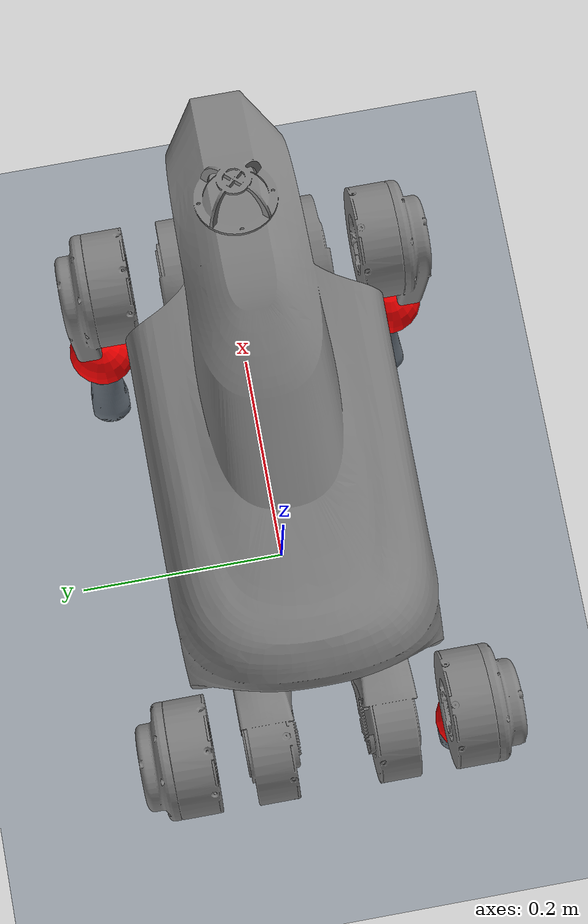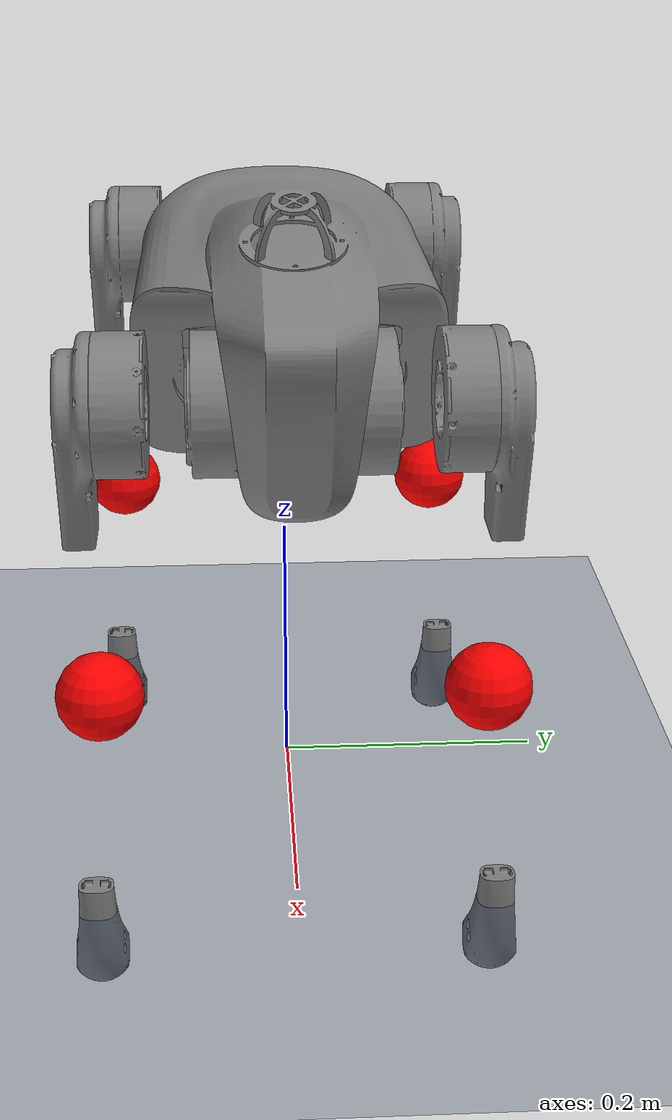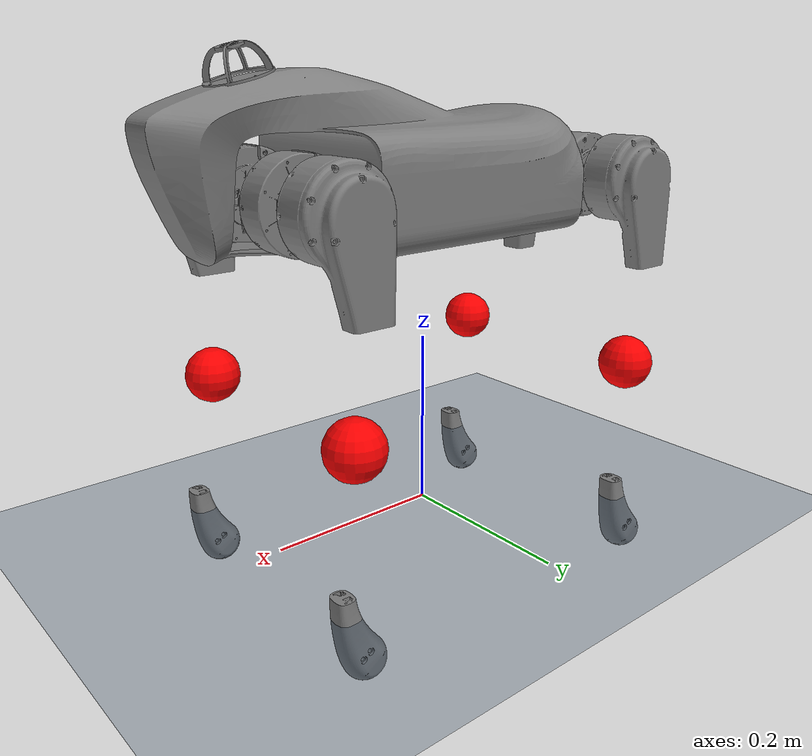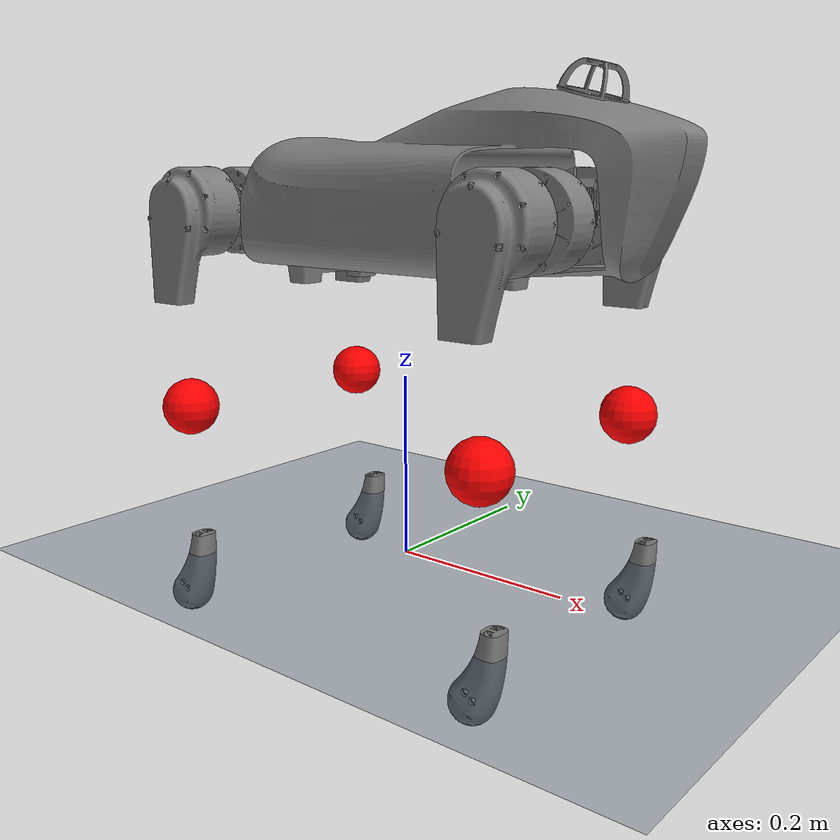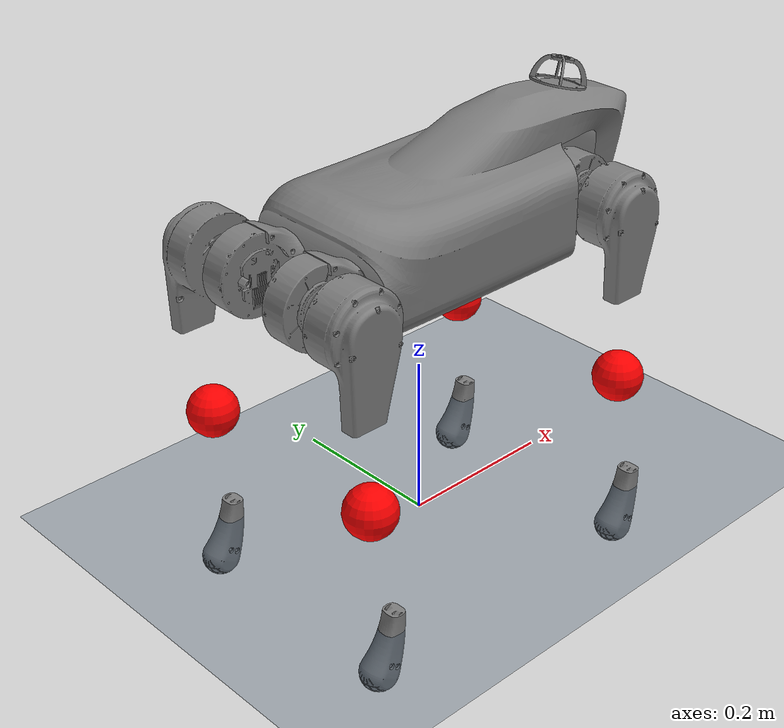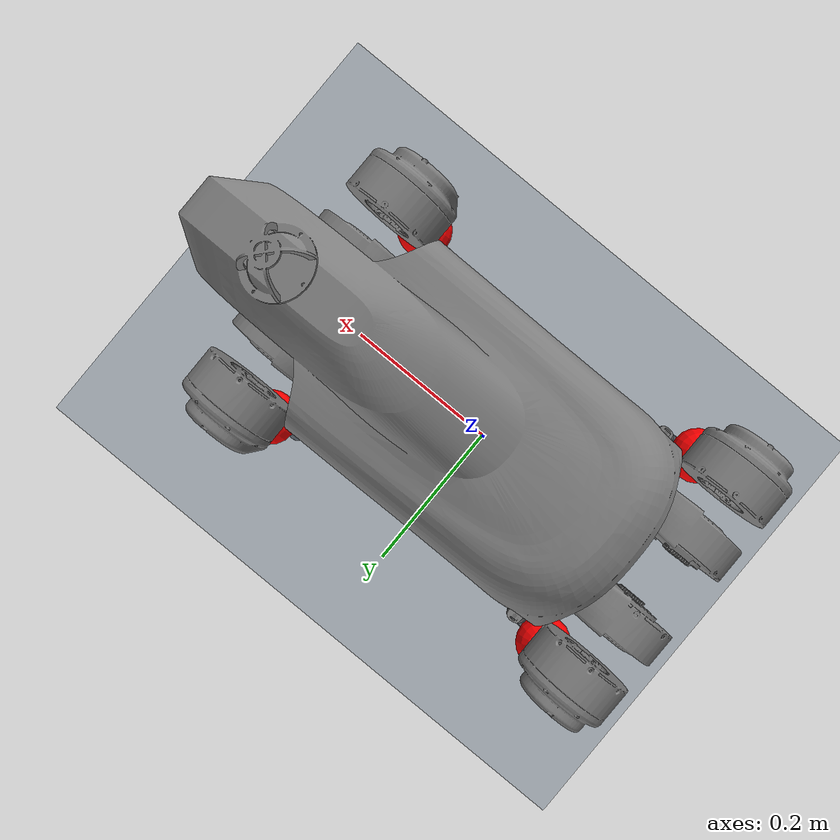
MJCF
<mujoco model="wr3">
  <compiler angle="radian"/>
   <include file="wr3_v2_sphere_knee_has_limit.xml" />

  <option timestep='0.005' iterations='50' solver='PGS' gravity='0 0 -9.81'>
    <flag  frictionloss="enable"/>
  </option>

  <size njmax="500" nconmax="100" />
  <statistic center="1 0.7 1.5" extent="0.8" />
  <visual>
    <headlight diffuse="0.6 0.6 0.6" ambient="0.3 0.3 0.3" specular="0 0 0" />
    <rgba haze="0.15 0.25 0.35 1" />
    <global azimuth="-140" elevation="-30" />
  </visual>
  <asset>
    <texture type="skybox" builtin="flat" rgb1="0 0 0" rgb2="0 0 0" width="512" height="3072" />
    <texture type="2d" name="groundplane" builtin="checker" mark="edge" rgb1="0.2 0.3 0.4"
      rgb2="0.1 0.2 0.3" markrgb="0.8 0.8 0.8" width="300" height="300" />
    <material name="groundplane" texture="groundplane" texuniform="true" texrepeat="5 5"
      reflectance="0.2" />
    <texture type="skybox" builtin="gradient" rgb1="0.3 0.5 0.7" rgb2="0 0 0" width="512" height="512"/>
    <texture name="texplane" type="2d" builtin="checker" rgb1=".2 .3 .4" rgb2=".1 0.15 0.2"
        width="512" height="512" mark="cross" markrgb=".8 .8 .8"/>
    <texture name="texplane2" type="2d" builtin="checker" rgb1="1 0.3137 0.1843" rgb2="0.0 0.30196 0.38039"
        width="512" height="512" mark="cross" markrgb=".8 .8 .8"/>
    <material name="matplane" reflectance="0." texture="texplane" texrepeat="1 1" texuniform="true"/>
    <material name="matplane2" reflectance="0.1" texture="texplane2" texrepeat="1 1" texuniform="true"/>
    <hfield name='hf0' nrow='200' ncol='200' size="10 5 0.2 .1"/>
    <hfield file="../terrain/uneven.png" name="hf1" ncol="0" nrow="0" size="50 50 0.35 0.1" />
  </asset>
  <worldbody>
    <light directional="true" diffuse=".4 .4 .4" specular="0.1 0.1 0.1" pos="0 0 5.0" dir="0 0 -1" castshadow="false"/>
    <light directional="true" diffuse=".6 .6 .6" specular="0.2 0.2 0.2" pos="0 0 4" dir="0 0 -1"/>
    <geom name="floor" size="0 0 0.05" type="plane" material="groundplane" />
  </worldbody>
</mujoco>

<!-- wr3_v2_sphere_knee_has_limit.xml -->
<mujoco model="wr3">
    <compiler angle="radian" meshdir="./meshes/" autolimits="true"/>
    <default>
        <default class="wr3">
            <geom type="mesh"/>
            <joint damping="0." armature="0.0" limited="true"/>
            <default class="visual">
                <geom contype="0" conaffinity="0" group="2"/>
            </default>
            <default class="collision">
                <geom group="3" mass="0" density="0"/>
            </default>
            <site size="0.001" rgba="0.5 0.5 0.5 0.3" group="4"/>
        </default>
    </default>

    <asset>
        <mesh name="trunk_link" file="trunk_link.STL"/>
        <mesh name="FL_hip_link" file="FL_hip_link.STL"/>
        <mesh name="FL_thigh_link" file="FL_thigh_link.STL"/>
        <mesh name="FL_calf_link" file="FL_calf_link.STL"/>
        <mesh name="FR_hip_link" file="FR_hip_link.STL"/>
        <mesh name="FR_thigh_link" file="FR_thigh_link.STL"/>
        <mesh name="FR_calf_link" file="FR_calf_link.STL"/>
        <mesh name="RL_hip_link" file="RL_hip_link.STL"/>
        <mesh name="RL_thigh_link" file="RL_thigh_link.STL"/>
        <mesh name="RL_calf_link" file="RL_calf_link.STL"/>
        <mesh name="RR_hip_link" file="RR_hip_link.STL"/>
        <mesh name="RR_thigh_link" file="RR_thigh_link.STL"/>
        <mesh name="RR_calf_link" file="RR_calf_link.STL"/>
    </asset>

    <worldbody>
        <body name="trunk_link" pos="-0. 0. 0.375" childclass="wr3">
            <inertial pos="0.023376 0.001413 0.010474" quat="0 0 0 1" mass="8.028"
                      diaginertia="0.034 0.107105 0.115227"/>
            <freejoint/>
            <geom class="visual" mesh="trunk_link"/>
            <geom class="collision" mesh="trunk_link"/>
            <body name="FL_hip_link" pos="0.135 0.05 0">
                <inertial pos="0.057196 0.003387 -8.5e-05" quat="0.512282 0.516274 0.485122 0.485474" mass="0.838"
                          diaginertia="0.00104664 0.000737277 0.00058853"/>
                <joint name="FL_hip_joint" pos="0 0 0" axis="1 0 0" limited="true" range="-0.69813 0.69813"/>
                <geom class="visual" mesh="FL_hip_link"/>
                <body name="FL_thigh_link" pos="0.0625 0.02 0">
                    <inertial pos="-0.001565 0.046615 -0.027916" quat="0.63718 -0.0578282 0.0378488 0.76761"
                              mass="1.059" diaginertia="0.00482696 0.00453766 0.000725459"/>
                    <joint name="FL_thigh_joint" pos="0 0 0" axis="0 1 0" limited="true" range="-0.66323 0.79253"/>
                    <geom class="visual" mesh="FL_thigh_link"/>
                    <geom type="sphere" size="0.031" pos="0 0.0652  -0.213" rgba="1. 0. 0. 1." mass="0"/>
                    <body name="FL_calf_link" pos="0 0.0732 -0.213">
                        <inertial pos="0.008159 0.000159 -0.10787" quat="0.713411 0.00272894 0.00401625 0.700729"
                                  mass="0.125" diaginertia="0.000955627 0.00094351 2.87627e-05"/>
                        <joint name="FL_calf_joint" pos="0 0 0" axis="0 1 0" limited="true" range="-2.7053 -0.89012"/>
                        <geom class="visual" mesh="FL_calf_link"/>
                        <geom class="collision" mesh="FL_calf_link"/>
                    </body>
                </body>
            </body>
            <body name="FR_hip_link" pos="0.135 -0.05 0">
                <inertial pos="0.056824 -0.003763 -1.9e-05" quat="0.485952 0.48455 0.519225 0.50938" mass="0.826"
                          diaginertia="0.00102787 0.000719354 0.000572311"/>
                <joint name="FR_hip_joint" pos="0 0 0" axis="1 0 0" limited="true" range="-0.69813 0.69813"/>
                <geom class="visual" mesh="FR_hip_link"/>
                <body name="FR_thigh_link" pos="0.0625 -0.02 0">
                    <inertial pos="-0.001574 -0.046573 -0.027836" quat="0.766481 0.0387532 -0.0565184 0.638601"
                              mass="1.057" diaginertia="0.004823 0.00453234 0.000726569"/>
                    <joint name="FR_thigh_joint" pos="0 0 0" axis="0 1 0" limited="true" range="-0.66323 0.79253"/>
                    <geom class="visual" mesh="FR_thigh_link"/>
                    <geom type="sphere" size="0.031" pos="0 -0.0652  -0.213" rgba="1. 0. 0. 1." mass="0"/>
                    <body name="FR_calf_link" pos="0 -0.0732 -0.213">
                        <inertial pos="0.00816 -0.000208 -0.10787" quat="0.406887 0.0429408 0.0196668 0.912257"
                                  mass="0.125" diaginertia="0.000642659 0.000642659 0.000642659"/>
                        <joint name="FR_calf_joint" pos="0 0 0" axis="0 1 0" limited="true" range="-2.7053 -0.89012"/>
                        <geom class="visual" mesh="FR_calf_link"/>
                        <geom class="collision" mesh="FR_calf_link"/>
                    </body>
                </body>
            </body>
            <body name="RL_hip_link" pos="-0.135 0.05 0">
                <inertial pos="-0.056595 0.004147 8.9e-05" quat="0.477982 0.493847 0.513765 0.513511" mass="0.81"
                          diaginertia="0.00101868 0.000704194 0.000562286"/>
                <joint name="RL_hip_joint" pos="0 0 0" axis="1 0 0" limited="true" range="-0.69813 0.69813"/>
                <geom class="visual" mesh="RL_hip_link"/>
                <body name="RL_thigh_link" pos="-0.0625 0.02 0">
                    <inertial pos="-0.001565 0.046615 -0.027916" quat="0.63718 -0.0578282 0.0378488 0.76761"
                              mass="1.059" diaginertia="0.00482696 0.00453766 0.000725459"/>
                    <joint name="RL_thigh_joint" pos="0 0 0" axis="0 1 0" limited="true" range="-0.66323 0.70295"/>
                    <geom class="visual" mesh="RL_thigh_link"/>
                    <geom type="sphere" size="0.031" pos="0 0.0652  -0.213" rgba="1. 0. 0. 1." mass="0"/>
                    <body name="RL_calf_link" pos="0 0.0732 -0.213">
                        <inertial pos="0.008159 0.000159 -0.10787" quat="0.713411 0.00272894 0.00401625 0.700729"
                                  mass="0.125" diaginertia="0.000955627 0.00094351 2.87627e-05"/>
                        <joint name="RL_calf_joint" pos="0 0 0" axis="0 1 0" limited="true" range="-2.7053 -0.89012"/>
                        <geom class="visual" mesh="RL_calf_link"/>
                        <geom class="collision" mesh="RL_calf_link"/>
                    </body>
                </body>
            </body>
            <body name="RR_hip_link" pos="-0.135 -0.05 0">
                <inertial pos="-0.056604 -0.004164 0.000119" quat="0.514903 0.51304 0.493934 0.477172" mass="0.81"
                          diaginertia="0.00101888 0.000704655 0.000562932"/>
                <joint name="RR_hip_joint" pos="0 0 0" axis="1 0 0" limited="true" range="-0.698132 0.698132"/>
                <geom class="visual" mesh="RR_hip_link"/>
                <body name="RR_thigh_link" pos="-0.0625 -0.02 0">
                    <inertial pos="-0.001574 -0.046573 -0.027836" quat="0.766481 0.0387532 -0.0565184 0.638601"
                              mass="1.057" diaginertia="0.004823 0.00453234 0.000726569"/>
                    <joint name="RR_thigh_joint" pos="0 0 0" axis="0 1 0" limited="true" range="-0.663225 0.70295"/>
                    <geom class="visual" mesh="RR_thigh_link"/>
                    <geom type="sphere" size="0.031" pos="0 -0.0652  -0.213" rgba="1. 0. 0. 1." mass="0"/>
                    <body name="RR_calf_link" pos="0 -0.0732 -0.213">
                        <inertial pos="0.00816 -0.000208 -0.10787" quat="0.406887 0.0429408 0.0196668 0.912257"
                                  mass="0.125" diaginertia="0.000642659 0.000642659 0.000642659"/>
                        <joint name="RR_calf_joint" pos="0 0 0" axis="0 1 0" limited="true" range="-2.7053 -0.89012"/>
                        <geom class="visual" mesh="RR_calf_link"/>
                        <geom class="collision" mesh="RR_calf_link"/>
                    </body>
                </body>
            </body>
        </body>
    </worldbody>

    <actuator>
        <motor name="FL_hip_joint" joint="FL_hip_joint" ctrlrange="-20 20"/>
        <motor name="FL_thigh_joint" joint="FL_thigh_joint" ctrlrange="-20 20"/>
        <motor name="FL_calf_joint" joint="FL_calf_joint" ctrlrange="-20 20"/>
        <motor name="FR_hip_joint" joint="FR_hip_joint" ctrlrange="-20 20"/>
        <motor name="FR_thigh_joint" joint="FR_thigh_joint" ctrlrange="-20 20"/>
        <motor name="FR_calf_joint" joint="FR_calf_joint" ctrlrange="-20 20"/>

        <motor name="RL_hip_joint" joint="RL_hip_joint" ctrlrange="-20 20"/>
        <motor name="RL_thigh_joint" joint="RL_thigh_joint" ctrlrange="-20 20"/>
        <motor name="RL_calf_joint" joint="RL_calf_joint" ctrlrange="-20 20"/>
        <motor name="RR_hip_joint" joint="RR_hip_joint" ctrlrange="-20 20"/>
        <motor name="RR_thigh_joint" joint="RR_thigh_joint" ctrlrange="-20 20"/>
        <motor name="RR_calf_joint" joint="RR_calf_joint" ctrlrange="-20 20"/>
    </actuator>

</mujoco>
